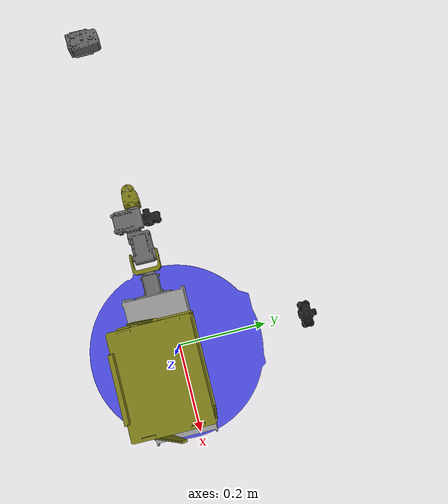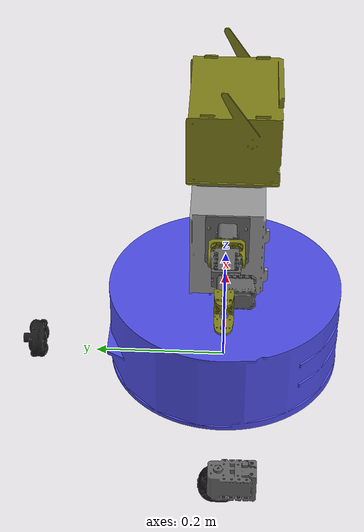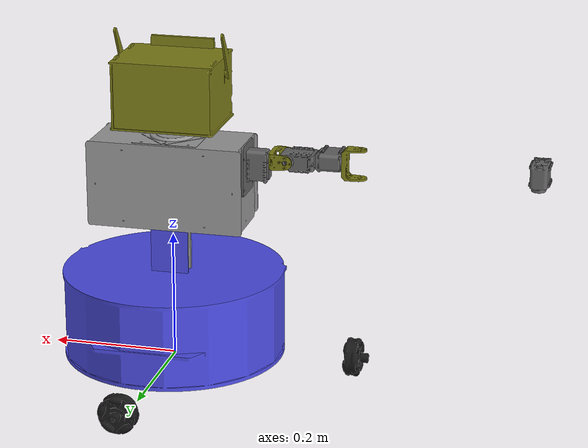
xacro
<?xml version="1.0"?>
<robot xmlns:xacro="http://www.ros.org/wiki/xacro" name="v2mini">

  <xacro:property name="pi" value="3.14159" />

  <!-- base properties -->
  <xacro:property name="base_offset_z" value="0.0132" />
  <xacro:property name="base_collision_height" value="0.132" />
  <xacro:property name="base_collision_radius" value="0.175" />

  <!-- wheel properties -->
  <xacro:property name="wheel_radius" value="0.03" />
  <xacro:property name="wheel_offset_radial" value="0.15" />

  <!-- torso properties -->
  <xacro:property name="torso_offset_z" value="0.175" />
  <xacro:property name="torso_width" value="0.2373" />

  <!-- head properties -->
  <xacro:property name="head_offset_z" value="0.2" />

  <!-- arm properties -->
  <xacro:property name="motor_depth" value="0.04175" />

  <!-- materials -->
  <material name="white">
    <color rgba="0.6 0.6 0.6 1"/>
  </material>
  <material name="blue">
    <color rgba="0.3 0.3 0.9 1"/>
  </material>
  <material name="black">
    <color rgba="0.1 0.1 0.1 1"/>
  </material>
  <material name="grey">
    <color rgba="0.4 0.4 0.4 1"/>
  </material>
  <material name="yellow">
    <color rgba="0.5 0.5 0.1 1"/>
  </material>

  <!-- **** BASE **** -->

  <link name="base_link">
    <visual>
      <origin xyz="0 0 ${base_offset_z}" rpy="0 0 0" />
      <geometry>
        <mesh filename="package://v2mini_description/meshes/base/base.stl" />
      </geometry>
      <material name="blue"/>
    </visual>
    <collision>
      <origin xyz="0 0 ${base_offset_z}" rpy="0 0 0" />
      <geometry>
        <cylinder length="${base_collision_height}" radius="${base_collision_radius}"/>
      </geometry>
    </collision>
  </link>

  <!-- Macro for creating base wheels -->
  <xacro:macro name="wheel" params="prefix reflect rotate">

    <link name="${prefix}_wheel">
      <visual>
        <origin xyz="${wheel_offset_radial*-rotate} ${wheel_offset_radial*(1-rotate)} -0.01" rpy="0 0 ${pi/2*rotate}"/>
        <geometry>
          <mesh filename="package://v2mini_description/meshes/base/base_wheel.stl" />
        </geometry>
        <material name="black"/>
      </visual>
    </link>

    <joint name="${prefix}_axel" type="continuous">
      <parent link="base_link"/>
      <child link="${prefix}_wheel"/>
      <origin xyz="${wheel_offset_radial*reflect*rotate} ${wheel_offset_radial*reflect*(1-rotate)} ${wheel_radius}"/>
      <axis xyz="${rotate} ${1-rotate} 0"/>
    </joint>

  </xacro:macro>

  <xacro:wheel prefix="back" reflect="1" rotate="0"/>
  <xacro:wheel prefix="front" reflect="-1" rotate="0"/>
  <xacro:wheel prefix="left" reflect="1" rotate="1"/>
  <xacro:wheel prefix="right" reflect="-1" rotate="1"/>

  <!-- **** TORSO **** -->

  <link name="torso_link">
    <visual>
      <origin xyz="0 0 ${torso_offset_z}" rpy="0 0 0" />
      <geometry>
        <mesh filename="package://v2mini_description/meshes/torso/torso.stl" />
      </geometry>
      <material name="white"/>
    </visual>
  </link>

  <joint name="torso_slide" type="prismatic">
    <parent link="base_link"/>
    <child link="torso_link"/>
    <origin xyz="0 0 ${torso_offset_z}"/>
    <axis xyz="0 0 1"/>
    <limit effort="1000.0" lower="-0.04" upper="0.04" velocity="0.5"/>
  </joint>

  <!-- **** HEAD **** -->

  <link name="head_link">
    <visual>
      <origin xyz="0 0 ${-head_offset_z*2-0.065}" rpy="0 0 0" />
      <geometry>
        <mesh filename="package://v2mini_description/meshes/head/head.stl" />
      </geometry>
      <material name="yellow"/>
    </visual>
  </link>

  <joint name="head_joint" type="continuous">
    <parent link="torso_link"/>
    <child link="head_link"/>
    <origin xyz="0 0 ${head_offset_z}"/>
    <axis xyz="0 0 1"/>
  </joint>

  <!-- **** ARM **** -->

  <link name="arm_link1">
    <visual>
      <origin xyz="${torso_width/2} 0 -0.41" rpy="0 0 0" />
      <geometry>
        <mesh filename="package://v2mini_description/meshes/arm/arm_link1.stl" />
      </geometry>
      <material name="grey"/>
    </visual>
  </link>

  <joint name="arm_joint_1" type="fixed">
    <parent link="torso_link"/>
    <child link="arm_link1"/>
    <origin xyz="${-torso_width/2} 0 0.164"/>
  </joint>

  <link name="arm_link2">
    <visual>
      <origin xyz="${torso_width/2+motor_depth} 0 -0.41" rpy="0 0 0" />
      <geometry>
        <mesh filename="package://v2mini_description/meshes/arm/arm_link2.stl" />
      </geometry>
      <material name="yellow"/>
    </visual>
  </link>

  <joint name="arm_joint_2" type="continuous">
    <parent link="arm_link1"/>
    <child link="arm_link2"/>
    <origin xyz="${-motor_depth} 0 0"/>
  </joint>

  <link name="arm_link3">
    <visual>
      <origin xyz="${torso_width/2+motor_depth+0.025} 0 -0.41" rpy="0 0 0" />
      <geometry>
        <mesh filename="package://v2mini_description/meshes/arm/arm_link3.stl" />
      </geometry>
      <material name="grey"/>
    </visual>
  </link>

  <joint name="arm_joint_3" type="continuous">
    <parent link="arm_link2"/>
    <child link="arm_link3"/>
    <axis xyz="0 1 0"/>
    <origin xyz="-0.027 0 0"/>
  </joint>

  <link name="arm_link4">
    <visual>
      <origin xyz="${torso_width/2+motor_depth+0.1115} 0 -0.41" rpy="0 0 0" />
      <geometry>
        <mesh filename="package://v2mini_description/meshes/arm/arm_link4.stl" />
      </geometry>
      <material name="yellow"/>
    </visual>
  </link>

  <joint name="arm_joint_4" type="continuous">
    <parent link="arm_link3"/>
    <child link="arm_link4"/>
    <axis xyz="1 0 0"/>
    <origin xyz="-0.0855 0 0"/>
  </joint>

  <link name="arm_link5">
    <visual>
      <origin xyz="0 0 -0.41" rpy="0 0 0" />
      <geometry>
        <mesh filename="package://v2mini_description/meshes/arm/arm_link5.stl" />
      </geometry>
      <material name="grey"/>
    </visual>
  </link>

  <joint name="arm_joint_5" type="continuous">
    <parent link="arm_link4"/>
    <child link="arm_link5"/>
    <axis xyz="0 0 1"/>
    <origin xyz="0 0 0"/>
  </joint>

</robot>
